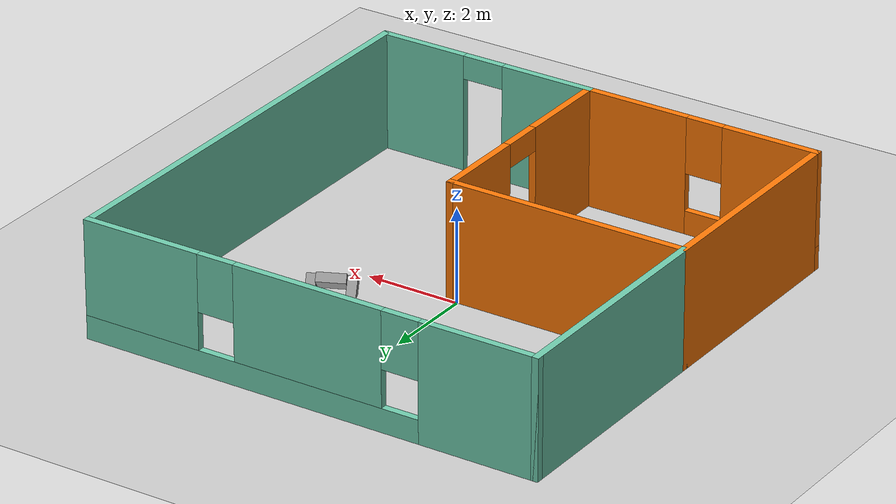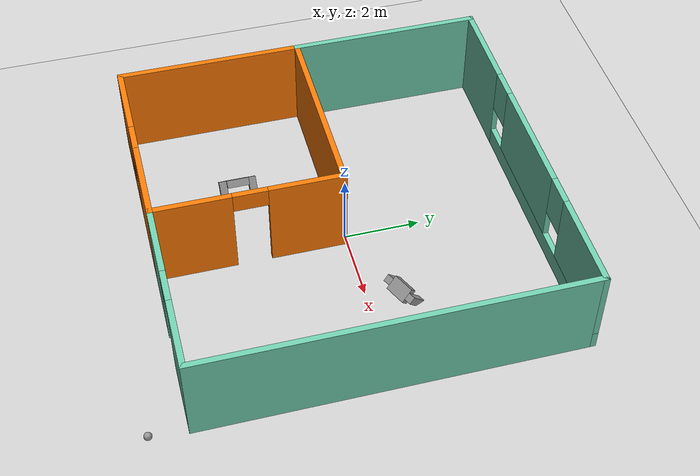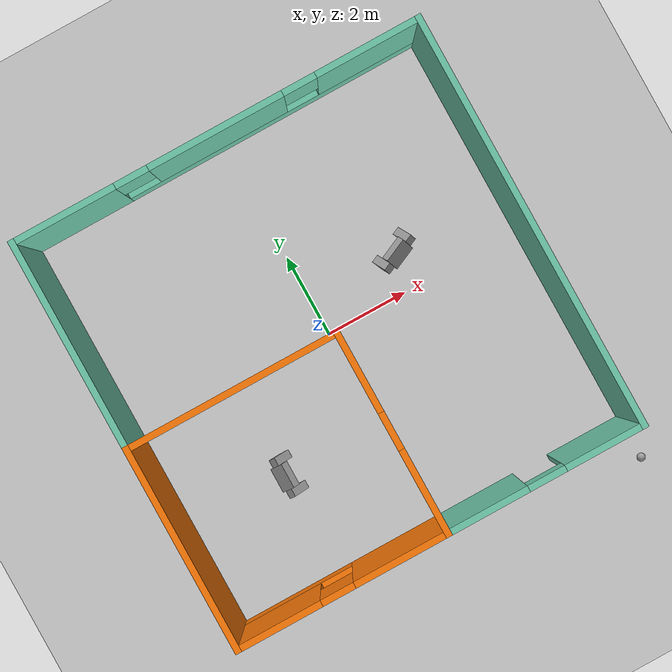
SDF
<sdf version="1.6">
 <world name="default">
  <plugin name="welcome_message" filename="libwelcome_message.so"/>
  <light name="sun" type="directional">
   <pose>0 0 10 0 -0 0</pose>
   <diffuse>0.8 0.8 0.8 1</diffuse>
   <specular>0.1 0.1 0.1 1</specular>
   <attenuation>
    <range>1000</range>
    <constant>0.9</constant>
    <linear>0.01</linear>
    <quadratic>0.001</quadratic>
   </attenuation>
   <direction>-0.5 0.5 -1</direction>
  </light>
  <model name="ground_plane">
   <static>1</static>
   <link name="link">
    <collision name="collision">
     <geometry><plane><normal>0 0 1</normal><size>100 100</size></plane></geometry>
     <surface><friction><ode><mu>100</mu><mu2>50</mu2></ode></friction></surface>
    </collision>
    <visual name="visual">
     <cast_shadows>0</cast_shadows>
     <geometry><plane><normal>0 0 1</normal><size>100 100</size></plane></geometry>
     <material>
      <script><uri>file://media/materials/scripts/gazebo.material</uri><name>Gazebo/Grey</name></script>
     </material>
    </visual>
   </link>
  </model>
  <gravity>0 0 -9.8</gravity>
  <magnetic_field>6e-06 2.3e-05 -4.2e-05</magnetic_field>
  <atmosphere type="adiabatic"/>
  <physics name="default_physics" default="0" type="ode">
   <max_step_size>0.001</max_step_size>
   <real_time_factor>1</real_time_factor>
   <real_time_update_rate>1000</real_time_update_rate>
  </physics>
  <scene><ambient>0.4 0.4 0.4 1</ambient><background>0.7 0.7 0.7 1</background><shadows>1</shadows></scene>
  <spherical_coordinates>
   <surface_model>EARTH_WGS84</surface_model>
   <latitude_deg>0</latitude_deg>
   <longitude_deg>0</longitude_deg>
   <elevation>0</elevation>
   <heading_deg>0</heading_deg>
  </spherical_coordinates>
  <model name="Building">
   <link name="Wall_0">
    <collision name="Wall_0_Collision">
     <geometry><box><size>10 0.15 2.5</size></box></geometry>
     <pose>0 0 1.25 0 -0 0</pose>
    </collision>
    <visual name="Wall_0_Visual">
     <pose>0 0 1.25 0 -0 0</pose>
     <geometry><box><size>10 0.15 2.5</size></box></geometry>
     <material>
      <script><uri>file://media/materials/scripts/gazebo.material</uri><name>Gazebo/Grey</name></script>
      <ambient>0.435294 0.796078 0.67451 1</ambient>
     </material>
    </visual>
    <pose>4.925 0 0 0 -0 1.5708</pose>
   </link>
   <link name="Wall_12">
    <collision name="Wall_12_Collision">
     <geometry><box><size>5 0.15 2.5</size></box></geometry>
     <pose>0 0 1.25 0 -0 0</pose>
    </collision>
    <visual name="Wall_12_Visual">
     <pose>0 0 1.25 0 -0 0</pose>
     <geometry><box><size>5 0.15 2.5</size></box></geometry>
     <material>
      <script><uri>file://media/materials/scripts/gazebo.material</uri><name>Gazebo/Grey</name></script>
      <ambient>0.996078 0.47451 0.0196078 1</ambient>
     </material>
    </visual>
    <pose>-4.925 -2.5 0 0 -0 1.5708</pose>
   </link>
   <link name="Wall_15">
    <collision name="Wall_15_Collision">
     <geometry><box><size>5.15 0.15 2.5</size></box></geometry>
     <pose>0 0 1.25 0 -0 0</pose>
    </collision>
    <visual name="Wall_15_Visual">
     <pose>0 0 1.25 0 -0 0</pose>
     <geometry><box><size>5.15 0.15 2.5</size></box></geometry>
     <material>
      <script><uri>file://media/materials/scripts/gazebo.material</uri><name>Gazebo/Grey</name></script>
      <ambient>0.435294 0.796078 0.67451 1</ambient>
     </material>
    </visual>
    <pose>-4.925 2.425 0 0 0 -1.5708</pose>
   </link>
   <link name="Wall_17">
    <pose>0.175 -2.5 0 0 0 -1.5708</pose>
    <visual name="Wall_17_Visual_0">
     <pose>-1.5019 0 1.25 0 -0 0</pose>
     <geometry><box><size>1.9962 0.15 2.5</size></box></geometry>
     <material>
      <script><uri>file://media/materials/scripts/gazebo.material</uri><name>Gazebo/Grey</name></script>
      <ambient>0.996078 0.47451 0.0196078 1</ambient>
     </material>
    </visual>
    <collision name="Wall_17_Collision_0">
     <geometry><box><size>1.9962 0.15 2.5</size></box></geometry>
     <pose>-1.5019 0 1.25 0 -0 0</pose>
    </collision>
    <visual name="Wall_17_Visual_1">
     <pose>1.4481 0 1.25 0 -0 0</pose>
     <geometry><box><size>2.1038 0.15 2.5</size></box></geometry>
     <material>
      <script><uri>file://media/materials/scripts/gazebo.material</uri><name>Gazebo/Grey</name></script>
      <ambient>0.996078 0.47451 0.0196078 1</ambient>
     </material>
    </visual>
    <collision name="Wall_17_Collision_1">
     <geometry><box><size>2.1038 0.15 2.5</size></box></geometry>
     <pose>1.4481 0 1.25 0 -0 0</pose>
    </collision>
    <visual name="Wall_17_Visual_2">
     <pose>-0.053797 0 2.25 0 -0 0</pose>
     <geometry><box><size>0.9 0.15 0.5</size></box></geometry>
     <material>
      <script><uri>file://media/materials/scripts/gazebo.material</uri><name>Gazebo/Grey</name></script>
      <ambient>0.996078 0.47451 0.0196078 1</ambient>
     </material>
    </visual>
    <collision name="Wall_17_Collision_2">
     <geometry><box><size>0.9 0.15 0.5</size></box></geometry>
     <pose>-0.053797 0 2.25 0 -0 0</pose>
    </collision>
   </link>
   <link name="Wall_18">
    <pose>-2.375 -4.925 0 0 -0 3.14159</pose>
    <visual name="Wall_18_Visual_0">
     <pose>-1.45794 0 1.25 0 -0 0</pose>
     <geometry><box><size>2.33413 0.15 2.5</size></box></geometry>
     <material>
      <script><uri>file://media/materials/scripts/gazebo.material</uri><name>Gazebo/Grey</name></script>
      <ambient>0.996078 0.47451 0.0196078 1</ambient>
     </material>
    </visual>
    <collision name="Wall_18_Collision_0">
     <geometry><box><size>2.33413 0.15 2.5</size></box></geometry>
     <pose>-1.45794 0 1.25 0 -0 0</pose>
    </collision>
    <visual name="Wall_18_Visual_1">
     <pose>1.16706 0 0.25 0 -0 0</pose>
     <geometry><box><size>2.91587 0.15 0.5</size></box></geometry>
     <material>
      <script><uri>file://media/materials/scripts/gazebo.material</uri><name>Gazebo/Grey</name></script>
      <ambient>0.996078 0.47451 0.0196078 1</ambient>
     </material>
    </visual>
    <collision name="Wall_18_Collision_1">
     <geometry><box><size>2.91587 0.15 0.5</size></box></geometry>
     <pose>1.16706 0 0.25 0 -0 0</pose>
    </collision>
    <visual name="Wall_18_Visual_2">
     <pose>1.56706 0 1.5 0 -0 0</pose>
     <geometry><box><size>2.11587 0.15 2</size></box></geometry>
     <material>
      <script><uri>file://media/materials/scripts/gazebo.material</uri><name>Gazebo/Grey</name></script>
      <ambient>0.996078 0.47451 0.0196078 1</ambient>
     </material>
    </visual>
    <collision name="Wall_18_Collision_2">
     <geometry><box><size>2.11587 0.15 2</size></box></geometry>
     <pose>1.56706 0 1.5 0 -0 0</pose>
    </collision>
    <visual name="Wall_18_Visual_3">
     <pose>0.109129 0 1.9 0 -0 0</pose>
     <geometry><box><size>0.8 0.15 1.2</size></box></geometry>
     <material>
      <script><uri>file://media/materials/scripts/gazebo.material</uri><name>Gazebo/Grey</name></script>
      <ambient>0.996078 0.47451 0.0196078 1</ambient>
     </material>
    </visual>
    <collision name="Wall_18_Collision_3">
     <geometry><box><size>0.8 0.15 1.2</size></box></geometry>
     <pose>0.109129 0 1.9 0 -0 0</pose>
    </collision>
   </link>
   <link name="Wall_20">
    <pose>2.55 -4.925 0 0 -0 0</pose>
    <visual name="Wall_20_Visual_0">
     <pose>-1.43275 0 1.25 0 -0 0</pose>
     <geometry><box><size>2.03449 0.15 2.5</size></box></geometry>
     <material>
      <script><uri>file://media/materials/scripts/gazebo.material</uri><name>Gazebo/Grey</name></script>
      <ambient>0.435294 0.796078 0.67451 1</ambient>
     </material>
    </visual>
    <collision name="Wall_20_Collision_0">
     <geometry><box><size>2.03449 0.15 2.5</size></box></geometry>
     <pose>-1.43275 0 1.25 0 -0 0</pose>
    </collision>
    <visual name="Wall_20_Visual_1">
     <pose>1.46725 0 1.25 0 -0 0</pose>
     <geometry><box><size>1.96551 0.15 2.5</size></box></geometry>
     <material>
      <script><uri>file://media/materials/scripts/gazebo.material</uri><name>Gazebo/Grey</name></script>
      <ambient>0.435294 0.796078 0.67451 1</ambient>
     </material>
    </visual>
    <collision name="Wall_20_Collision_1">
     <geometry><box><size>1.96551 0.15 2.5</size></box></geometry>
     <pose>1.46725 0 1.25 0 -0 0</pose>
    </collision>
    <visual name="Wall_20_Visual_2">
     <pose>0.034491 0 2.25 0 -0 0</pose>
     <geometry><box><size>0.9 0.15 0.5</size></box></geometry>
     <material>
      <script><uri>file://media/materials/scripts/gazebo.material</uri><name>Gazebo/Grey</name></script>
      <ambient>0.435294 0.796078 0.67451 1</ambient>
     </material>
    </visual>
    <collision name="Wall_20_Collision_2">
     <geometry><box><size>0.9 0.15 0.5</size></box></geometry>
     <pose>0.034491 0 2.25 0 -0 0</pose>
    </collision>
   </link>
   <link name="Wall_25">
    <collision name="Wall_25_Collision">
     <geometry><box><size>5.25 0.15 2.5</size></box></geometry>
     <pose>0 0 1.25 0 -0 0</pose>
    </collision>
    <visual name="Wall_25_Visual">
     <pose>0 0 1.25 0 -0 0</pose>
     <geometry><box><size>5.25 0.15 2.5</size></box></geometry>
     <material>
      <script><uri>file://media/materials/scripts/gazebo.material</uri><name>Gazebo/Grey</name></script>
      <ambient>0.996078 0.47451 0.0196078 1</ambient>
     </material>
    </visual>
    <pose>-2.375 -0.075 0 0 -0 3.14159</pose>
   </link>
   <link name="Wall_32">
    <pose>0 4.925 0 0 -0 0</pose>
    <visual name="Wall_32_Visual_0">
     <pose>-3.72081 0 1.25 0 -0 0</pose>
     <geometry><box><size>2.55837 0.15 2.5</size></box></geometry>
     <material>
      <script><uri>file://media/materials/scripts/gazebo.material</uri><name>Gazebo/Grey</name></script>
      <ambient>0.435294 0.796078 0.67451 1</ambient>
     </material>
    </visual>
    <collision name="Wall_32_Collision_0">
     <geometry><box><size>2.55837 0.15 2.5</size></box></geometry>
     <pose>-3.72081 0 1.25 0 -0 0</pose>
    </collision>
    <visual name="Wall_32_Visual_1">
     <pose>1.27919 0 0.25 0 -0 0</pose>
     <geometry><box><size>7.44163 0.15 0.5</size></box></geometry>
     <material>
      <script><uri>file://media/materials/scripts/gazebo.material</uri><name>Gazebo/Grey</name></script>
      <ambient>0.435294 0.796078 0.67451 1</ambient>
     </material>
    </visual>
    <collision name="Wall_32_Collision_1">
     <geometry><box><size>7.44163 0.15 0.5</size></box></geometry>
     <pose>1.27919 0 0.25 0 -0 0</pose>
    </collision>
    <visual name="Wall_32_Visual_2">
     <pose>-0.01016 0 1.5 0 -0 0</pose>
     <geometry><box><size>3.26294 0.15 2</size></box></geometry>
     <material>
      <script><uri>file://media/materials/scripts/gazebo.material</uri><name>Gazebo/Grey</name></script>
      <ambient>0.435294 0.796078 0.67451 1</ambient>
     </material>
    </visual>
    <collision name="Wall_32_Collision_2">
     <geometry><box><size>3.26294 0.15 2</size></box></geometry>
     <pose>-0.01016 0 1.5 0 -0 0</pose>
    </collision>
    <visual name="Wall_32_Visual_3">
     <pose>3.71066 0 1.5 0 -0 0</pose>
     <geometry><box><size>2.57869 0.15 2</size></box></geometry>
     <material>
      <script><uri>file://media/materials/scripts/gazebo.material</uri><name>Gazebo/Grey</name></script>
      <ambient>0.435294 0.796078 0.67451 1</ambient>
     </material>
    </visual>
    <collision name="Wall_32_Collision_3">
     <geometry><box><size>2.57869 0.15 2</size></box></geometry>
     <pose>3.71066 0 1.5 0 -0 0</pose>
    </collision>
    <visual name="Wall_32_Visual_4">
     <pose>-2.04163 0 1.9 0 -0 0</pose>
     <geometry><box><size>0.8 0.15 1.2</size></box></geometry>
     <material>
      <script><uri>file://media/materials/scripts/gazebo.material</uri><name>Gazebo/Grey</name></script>
      <ambient>0.435294 0.796078 0.67451 1</ambient>
     </material>
    </visual>
    <collision name="Wall_32_Collision_4">
     <geometry><box><size>0.8 0.15 1.2</size></box></geometry>
     <pose>-2.04163 0 1.9 0 -0 0</pose>
    </collision>
    <visual name="Wall_32_Visual_5">
     <pose>2.02131 0 1.9 0 -0 0</pose>
     <geometry><box><size>0.8 0.15 1.2</size></box></geometry>
     <material>
      <script><uri>file://media/materials/scripts/gazebo.material</uri><name>Gazebo/Grey</name></script>
      <ambient>0.435294 0.796078 0.67451 1</ambient>
     </material>
    </visual>
    <collision name="Wall_32_Collision_5">
     <geometry><box><size>0.8 0.15 1.2</size></box></geometry>
     <pose>2.02131 0 1.9 0 -0 0</pose>
    </collision>
   </link>
   <static>1</static>
  </model>
  <model name="HumanoidRobot_2">
   <link name="link_0">
    <pose>0 0 1.5 0 -0 0</pose>
    <inertial>
     <mass>1</mass>
     <inertia>
      <ixx>0.166667</ixx>
      <ixy>0</ixy>
      <ixz>0</ixz>
      <iyy>0.166667</iyy>
      <iyz>0</iyz>
      <izz>0.166667</izz>
     </inertia>
    </inertial>
    <visual name="visual">
     <geometry><box><size>0.4 0.6 0.2</size></box></geometry>
     <material>
      <lighting>1</lighting>
      <script><uri>file://media/materials/scripts/gazebo.material</uri><name>Gazebo/Grey</name></script>
      <ambient>0.3 0.3 0.3 1</ambient>
      <diffuse>0.7 0.7 0.7 1</diffuse>
      <specular>0.01 0.01 0.01 1</specular>
      <emissive>0 0 0 1</emissive>
      <shader type="vertex"><normal_map>__default__</normal_map></shader>
     </material>
    </visual>
    <collision name="collision">
     <geometry><box><size>0.4 0.6 0.2</size></box></geometry>
     <surface>
      <friction>
       <ode><mu>1</mu><mu2>1</mu2><fdir1>0 0 0</fdir1><slip1>0</slip1><slip2>0</slip2></ode>
       <torsional>
        <coefficient>1</coefficient>
        <patch_radius>0</patch_radius>
        <surface_radius>0</surface_radius>
        <use_patch_radius>1</use_patch_radius>
        <ode><slip>0</slip></ode>
       </torsional>
      </friction>
      <bounce><restitution_coefficient>0</restitution_coefficient><threshold>1e+06</threshold></bounce>
      <contact>
       <collide_without_contact>0</collide_without_contact>
       <collide_without_contact_bitmask>1</collide_without_contact_bitmask>
       <collide_bitmask>1</collide_bitmask>
       <ode>
        <soft_cfm>0</soft_cfm>
        <soft_erp>0.2</soft_erp>
        <kp>1e+13</kp>
        <kd>1</kd>
        <max_vel>0.01</max_vel>
        <min_depth>0</min_depth>
       </ode>
       <bullet>
        <split_impulse>1</split_impulse>
        <split_impulse_penetration_threshold>-0.01</split_impulse_penetration_threshold>
        <soft_cfm>0</soft_cfm>
        <soft_erp>0.2</soft_erp>
        <kp>1e+13</kp>
        <kd>1</kd>
       </bullet>
      </contact>
     </surface>
    </collision>
   </link>
   <link name="link_1">
    <pose>0 -0.4 0.85 0 -0 0</pose>
    <inertial>
     <mass>1</mass>
     <inertia>
      <ixx>0.166667</ixx>
      <ixy>0</ixy>
      <ixz>0</ixz>
      <iyy>0.166667</iyy>
      <iyz>0</iyz>
      <izz>0.166667</izz>
     </inertia>
    </inertial>
    <visual name="visual">
     <geometry><box><size>0.2 0.2 0.5</size></box></geometry>
     <material>
      <lighting>1</lighting>
      <script><uri>file://media/materials/scripts/gazebo.material</uri><name>Gazebo/Grey</name></script>
      <ambient>0.3 0.3 0.3 1</ambient>
      <diffuse>0.7 0.7 0.7 1</diffuse>
      <specular>0.01 0.01 0.01 1</specular>
      <emissive>0 0 0 1</emissive>
      <shader type="vertex"><normal_map>__default__</normal_map></shader>
     </material>
    </visual>
    <collision name="collision">
     <geometry><box><size>0.2 0.2 0.5</size></box></geometry>
     <surface>
      <friction>
       <ode><mu>1</mu><mu2>1</mu2><fdir1>0 0 0</fdir1><slip1>0</slip1><slip2>0</slip2></ode>
       <torsional>
        <coefficient>1</coefficient>
        <patch_radius>0</patch_radius>
        <surface_radius>0</surface_radius>
        <use_patch_radius>1</use_patch_radius>
        <ode><slip>0</slip></ode>
       </torsional>
      </friction>
      <bounce><restitution_coefficient>0</restitution_coefficient><threshold>1e+06</threshold></bounce>
      <contact>
       <collide_without_contact>0</collide_without_contact>
       <collide_without_contact_bitmask>1</collide_without_contact_bitmask>
       <collide_bitmask>1</collide_bitmask>
       <ode>
        <soft_cfm>0</soft_cfm>
        <soft_erp>0.2</soft_erp>
        <kp>1e+13</kp>
        <kd>1</kd>
        <max_vel>0.01</max_vel>
        <min_depth>0</min_depth>
       </ode>
       <bullet>
        <split_impulse>1</split_impulse>
        <split_impulse_penetration_threshold>-0.01</split_impulse_penetration_threshold>
        <soft_cfm>0</soft_cfm>
        <soft_erp>0.2</soft_erp>
        <kp>1e+13</kp>
        <kd>1</kd>
       </bullet>
      </contact>
     </surface>
    </collision>
   </link>
   <link name="link_1_clone">
    <pose>0 -0.4 1.35 0 -0 0</pose>
    <inertial>
     <mass>1</mass>
     <inertia>
      <ixx>0.166667</ixx>
      <ixy>0</ixy>
      <ixz>0</ixz>
      <iyy>0.166667</iyy>
      <iyz>0</iyz>
      <izz>0.166667</izz>
     </inertia>
    </inertial>
    <visual name="visual">
     <geometry><box><size>0.2 0.2 0.5</size></box></geometry>
     <material>
      <lighting>1</lighting>
      <script><uri>file://media/materials/scripts/gazebo.material</uri><name>Gazebo/Grey</name></script>
      <ambient>0.3 0.3 0.3 1</ambient>
      <diffuse>0.7 0.7 0.7 1</diffuse>
      <specular>0.01 0.01 0.01 1</specular>
      <emissive>0 0 0 1</emissive>
      <shader type="vertex"><normal_map>__default__</normal_map></shader>
     </material>
    </visual>
    <collision name="collision">
     <geometry><box><size>0.2 0.2 0.5</size></box></geometry>
     <surface>
      <friction>
       <ode><mu>1</mu><mu2>1</mu2><fdir1>0 0 0</fdir1><slip1>0</slip1><slip2>0</slip2></ode>
       <torsional>
        <coefficient>1</coefficient>
        <patch_radius>0</patch_radius>
        <surface_radius>0</surface_radius>
        <use_patch_radius>1</use_patch_radius>
        <ode><slip>0</slip></ode>
       </torsional>
      </friction>
      <bounce><restitution_coefficient>0</restitution_coefficient><threshold>1e+06</threshold></bounce>
      <contact>
       <collide_without_contact>0</collide_without_contact>
       <collide_without_contact_bitmask>1</collide_without_contact_bitmask>
       <collide_bitmask>1</collide_bitmask>
       <ode>
        <soft_cfm>0</soft_cfm>
        <soft_erp>0.2</soft_erp>
        <kp>1e+13</kp>
        <kd>1</kd>
        <max_vel>0.01</max_vel>
        <min_depth>0</min_depth>
       </ode>
       <bullet>
        <split_impulse>1</split_impulse>
        <split_impulse_penetration_threshold>-0.01</split_impulse_penetration_threshold>
        <soft_cfm>0</soft_cfm>
        <soft_erp>0.2</soft_erp>
        <kp>1e+13</kp>
        <kd>1</kd>
       </bullet>
      </contact>
     </surface>
    </collision>
   </link>
   <link name="link_1_clone_0">
    <pose>0 0.4 1.35 0 -0 0</pose>
    <inertial>
     <mass>1</mass>
     <inertia>
      <ixx>0.166667</ixx>
      <ixy>0</ixy>
      <ixz>0</ixz>
      <iyy>0.166667</iyy>
      <iyz>0</iyz>
      <izz>0.166667</izz>
     </inertia>
    </inertial>
    <visual name="visual">
     <geometry><box><size>0.2 0.2 0.5</size></box></geometry>
     <material>
      <lighting>1</lighting>
      <script><uri>file://media/materials/scripts/gazebo.material</uri><name>Gazebo/Grey</name></script>
      <ambient>0.3 0.3 0.3 1</ambient>
      <diffuse>0.7 0.7 0.7 1</diffuse>
      <specular>0.01 0.01 0.01 1</specular>
      <emissive>0 0 0 1</emissive>
      <shader type="vertex"><normal_map>__default__</normal_map></shader>
     </material>
    </visual>
    <collision name="collision">
     <geometry><box><size>0.2 0.2 0.5</size></box></geometry>
     <surface>
      <friction>
       <ode><mu>1</mu><mu2>1</mu2><fdir1>0 0 0</fdir1><slip1>0</slip1><slip2>0</slip2></ode>
       <torsional>
        <coefficient>1</coefficient>
        <patch_radius>0</patch_radius>
        <surface_radius>0</surface_radius>
        <use_patch_radius>1</use_patch_radius>
        <ode><slip>0</slip></ode>
       </torsional>
      </friction>
      <bounce><restitution_coefficient>0</restitution_coefficient><threshold>1e+06</threshold></bounce>
      <contact>
       <collide_without_contact>0</collide_without_contact>
       <collide_without_contact_bitmask>1</collide_without_contact_bitmask>
       <collide_bitmask>1</collide_bitmask>
       <ode>
        <soft_cfm>0</soft_cfm>
        <soft_erp>0.2</soft_erp>
        <kp>1e+13</kp>
        <kd>1</kd>
        <max_vel>0.01</max_vel>
        <min_depth>0</min_depth>
       </ode>
       <bullet>
        <split_impulse>1</split_impulse>
        <split_impulse_penetration_threshold>-0.01</split_impulse_penetration_threshold>
        <soft_cfm>0</soft_cfm>
        <soft_erp>0.2</soft_erp>
        <kp>1e+13</kp>
        <kd>1</kd>
       </bullet>
      </contact>
     </surface>
    </collision>
   </link>
   <link name="link_1_clone_1">
    <pose>0 0.4 0.85 0 -0 0</pose>
    <inertial>
     <mass>1</mass>
     <inertia>
      <ixx>0.166667</ixx>
      <ixy>0</ixy>
      <ixz>0</ixz>
      <iyy>0.166667</iyy>
      <iyz>0</iyz>
      <izz>0.166667</izz>
     </inertia>
    </inertial>
    <visual name="visual">
     <geometry><box><size>0.2 0.2 0.5</size></box></geometry>
     <material>
      <lighting>1</lighting>
      <script><uri>file://media/materials/scripts/gazebo.material</uri><name>Gazebo/Grey</name></script>
      <ambient>0.3 0.3 0.3 1</ambient>
      <diffuse>0.7 0.7 0.7 1</diffuse>
      <specular>0.01 0.01 0.01 1</specular>
      <emissive>0 0 0 1</emissive>
      <shader type="vertex"><normal_map>__default__</normal_map></shader>
     </material>
    </visual>
    <collision name="collision">
     <geometry><box><size>0.2 0.2 0.5</size></box></geometry>
     <surface>
      <friction>
       <ode><mu>1</mu><mu2>1</mu2><fdir1>0 0 0</fdir1><slip1>0</slip1><slip2>0</slip2></ode>
       <torsional>
        <coefficient>1</coefficient>
        <patch_radius>0</patch_radius>
        <surface_radius>0</surface_radius>
        <use_patch_radius>1</use_patch_radius>
        <ode><slip>0</slip></ode>
       </torsional>
      </friction>
      <bounce><restitution_coefficient>0</restitution_coefficient><threshold>1e+06</threshold></bounce>
      <contact>
       <collide_without_contact>0</collide_without_contact>
       <collide_without_contact_bitmask>1</collide_without_contact_bitmask>
       <collide_bitmask>1</collide_bitmask>
       <ode>
        <soft_cfm>0</soft_cfm>
        <soft_erp>0.2</soft_erp>
        <kp>1e+13</kp>
        <kd>1</kd>
        <max_vel>0.01</max_vel>
        <min_depth>0</min_depth>
       </ode>
       <bullet>
        <split_impulse>1</split_impulse>
        <split_impulse_penetration_threshold>-0.01</split_impulse_penetration_threshold>
        <soft_cfm>0</soft_cfm>
        <soft_erp>0.2</soft_erp>
        <kp>1e+13</kp>
        <kd>1</kd>
       </bullet>
      </contact>
     </surface>
    </collision>
   </link>
   <link name="link_2">
    <pose>0 -0.4 0.55 0 -0 0</pose>
    <inertial>
     <mass>1</mass>
     <inertia>
      <ixx>0.166667</ixx>
      <ixy>0</ixy>
      <ixz>0</ixz>
      <iyy>0.166667</iyy>
      <iyz>0</iyz>
      <izz>0.166667</izz>
     </inertia>
    </inertial>
    <visual name="visual">
     <geometry><box><size>0.4 0.4 0.1</size></box></geometry>
     <material>
      <lighting>1</lighting>
      <script><uri>file://media/materials/scripts/gazebo.material</uri><name>Gazebo/Grey</name></script>
      <ambient>0.3 0.3 0.3 1</ambient>
      <diffuse>0.7 0.7 0.7 1</diffuse>
      <specular>0.01 0.01 0.01 1</specular>
      <emissive>0 0 0 1</emissive>
      <shader type="vertex"><normal_map>__default__</normal_map></shader>
     </material>
    </visual>
    <collision name="collision">
     <geometry><box><size>0.4 0.4 0.1</size></box></geometry>
     <surface>
      <friction>
       <ode><mu>1</mu><mu2>1</mu2><fdir1>0 0 0</fdir1><slip1>0</slip1><slip2>0</slip2></ode>
       <torsional>
        <coefficient>1</coefficient>
        <patch_radius>0</patch_radius>
        <surface_radius>0</surface_radius>
        <use_patch_radius>1</use_patch_radius>
        <ode><slip>0</slip></ode>
       </torsional>
      </friction>
      <bounce><restitution_coefficient>0</restitution_coefficient><threshold>1e+06</threshold></bounce>
      <contact>
       <collide_without_contact>0</collide_without_contact>
       <collide_without_contact_bitmask>1</collide_without_contact_bitmask>
       <collide_bitmask>1</collide_bitmask>
       <ode>
        <soft_cfm>0</soft_cfm>
        <soft_erp>0.2</soft_erp>
        <kp>1e+13</kp>
        <kd>1</kd>
        <max_vel>0.01</max_vel>
        <min_depth>0</min_depth>
       </ode>
       <bullet>
        <split_impulse>1</split_impulse>
        <split_impulse_penetration_threshold>-0.01</split_impulse_penetration_threshold>
        <soft_cfm>0</soft_cfm>
        <soft_erp>0.2</soft_erp>
        <kp>1e+13</kp>
        <kd>1</kd>
       </bullet>
      </contact>
     </surface>
    </collision>
   </link>
   <link name="link_2_clone">
    <pose>0 0.4 0.55 0 -0 0</pose>
    <inertial>
     <mass>1</mass>
     <inertia>
      <ixx>0.166667</ixx>
      <ixy>0</ixy>
      <ixz>0</ixz>
      <iyy>0.166667</iyy>
      <iyz>0</iyz>
      <izz>0.166667</izz>
     </inertia>
    </inertial>
    <visual name="visual">
     <geometry><box><size>0.4 0.4 0.1</size></box></geometry>
     <material>
      <lighting>1</lighting>
      <script><uri>file://media/materials/scripts/gazebo.material</uri><name>Gazebo/Grey</name></script>
      <ambient>0.3 0.3 0.3 1</ambient>
      <diffuse>0.7 0.7 0.7 1</diffuse>
      <specular>0.01 0.01 0.01 1</specular>
      <emissive>0 0 0 1</emissive>
      <shader type="vertex"><normal_map>__default__</normal_map></shader>
     </material>
    </visual>
    <collision name="collision">
     <geometry><box><size>0.4 0.4 0.1</size></box></geometry>
     <surface>
      <friction>
       <ode><mu>1</mu><mu2>1</mu2><fdir1>0 0 0</fdir1><slip1>0</slip1><slip2>0</slip2></ode>
       <torsional>
        <coefficient>1</coefficient>
        <patch_radius>0</patch_radius>
        <surface_radius>0</surface_radius>
        <use_patch_radius>1</use_patch_radius>
        <ode><slip>0</slip></ode>
       </torsional>
      </friction>
      <bounce><restitution_coefficient>0</restitution_coefficient><threshold>1e+06</threshold></bounce>
      <contact>
       <collide_without_contact>0</collide_without_contact>
       <collide_without_contact_bitmask>1</collide_without_contact_bitmask>
       <collide_bitmask>1</collide_bitmask>
       <ode>
        <soft_cfm>0</soft_cfm>
        <soft_erp>0.2</soft_erp>
        <kp>1e+13</kp>
        <kd>1</kd>
        <max_vel>0.01</max_vel>
        <min_depth>0</min_depth>
       </ode>
       <bullet>
        <split_impulse>1</split_impulse>
        <split_impulse_penetration_threshold>-0.01</split_impulse_penetration_threshold>
        <soft_cfm>0</soft_cfm>
        <soft_erp>0.2</soft_erp>
        <kp>1e+13</kp>
        <kd>1</kd>
       </bullet>
      </contact>
     </surface>
    </collision>
   </link>
   <joint name="link_0_JOINT_2" type="revolute">
    <parent>link_0</parent>
    <child>link_1_clone_0</child>
    <axis>
     <xyz>0 1 0</xyz>
     <use_parent_model_frame>0</use_parent_model_frame>
     <limit>
      <lower>-1.79769e+308</lower>
      <upper>1.79769e+308</upper>
      <effort>-1</effort>
      <velocity>-1</velocity>
     </limit>
     <dynamics>
      <spring_reference>0</spring_reference>
      <spring_stiffness>0</spring_stiffness>
      <damping>0</damping>
      <friction>0</friction>
     </dynamics>
    </axis>
    <physics>
     <ode><limit><cfm>0</cfm><erp>0.2</erp></limit><suspension><cfm>0</cfm><erp>0.2</erp></suspension></ode>
    </physics>
   </joint>
   <joint name="link_1_JOINT_4" type="revolute">
    <parent>link_1</parent>
    <child>link_2</child>
    <axis>
     <xyz>0 1 0</xyz>
     <use_parent_model_frame>0</use_parent_model_frame>
     <limit>
      <lower>-1.79769e+308</lower>
      <upper>1.79769e+308</upper>
      <effort>-1</effort>
      <velocity>-1</velocity>
     </limit>
     <dynamics>
      <spring_reference>0</spring_reference>
      <spring_stiffness>0</spring_stiffness>
      <damping>0</damping>
      <friction>0</friction>
     </dynamics>
    </axis>
    <physics>
     <ode><limit><cfm>0</cfm><erp>0.2</erp></limit><suspension><cfm>0</cfm><erp>0.2</erp></suspension></ode>
    </physics>
   </joint>
   <joint name="link_1_clone_0_JOINT_3" type="revolute">
    <parent>link_1_clone_0</parent>
    <child>link_1_clone_1</child>
    <axis>
     <xyz>0 1 0</xyz>
     <use_parent_model_frame>0</use_parent_model_frame>
     <limit>
      <lower>-1.79769e+308</lower>
      <upper>1.79769e+308</upper>
      <effort>-1</effort>
      <velocity>-1</velocity>
     </limit>
     <dynamics>
      <spring_reference>0</spring_reference>
      <spring_stiffness>0</spring_stiffness>
      <damping>0</damping>
      <friction>0</friction>
     </dynamics>
    </axis>
    <physics>
     <ode><limit><cfm>0</cfm><erp>0.2</erp></limit><suspension><cfm>0</cfm><erp>0.2</erp></suspension></ode>
    </physics>
   </joint>
   <joint name="link_1_clone_1_JOINT_5" type="revolute">
    <parent>link_1_clone_1</parent>
    <child>link_2_clone</child>
    <axis>
     <xyz>0 1 0</xyz>
     <use_parent_model_frame>0</use_parent_model_frame>
     <limit>
      <lower>-1.79769e+308</lower>
      <upper>1.79769e+308</upper>
      <effort>-1</effort>
      <velocity>-1</velocity>
     </limit>
     <dynamics>
      <spring_reference>0</spring_reference>
      <spring_stiffness>0</spring_stiffness>
      <damping>0</damping>
      <friction>0</friction>
     </dynamics>
    </axis>
    <physics>
     <ode><limit><cfm>0</cfm><erp>0.2</erp></limit><suspension><cfm>0</cfm><erp>0.2</erp></suspension></ode>
    </physics>
   </joint>
   <joint name="link_1_clone_JOINT_0" type="revolute">
    <parent>link_0</parent>
    <child>link_1_clone</child>
    <axis>
     <xyz>0 1 0</xyz>
     <use_parent_model_frame>0</use_parent_model_frame>
     <limit>
      <lower>-1.79769e+308</lower>
      <upper>1.79769e+308</upper>
      <effort>-1</effort>
      <velocity>-1</velocity>
     </limit>
     <dynamics>
      <spring_reference>0</spring_reference>
      <spring_stiffness>0</spring_stiffness>
      <damping>0</damping>
      <friction>0</friction>
     </dynamics>
    </axis>
    <physics>
     <ode><limit><cfm>0</cfm><erp>0.2</erp></limit><suspension><cfm>0</cfm><erp>0.2</erp></suspension></ode>
    </physics>
   </joint>
   <joint name="link_1_clone_JOINT_1" type="revolute">
    <parent>link_1_clone</parent>
    <child>link_1</child>
    <axis>
     <xyz>0 1 0</xyz>
     <use_parent_model_frame>0</use_parent_model_frame>
     <limit>
      <lower>-1.79769e+308</lower>
      <upper>1.79769e+308</upper>
      <effort>-1</effort>
      <velocity>-1</velocity>
     </limit>
     <dynamics>
      <spring_reference>0</spring_reference>
      <spring_stiffness>0</spring_stiffness>
      <damping>0</damping>
      <friction>0</friction>
     </dynamics>
    </axis>
    <physics>
     <ode><limit><cfm>0</cfm><erp>0.2</erp></limit><suspension><cfm>0</cfm><erp>0.2</erp></suspension></ode>
    </physics>
   </joint>
   <static>0</static>
   <pose>-1.43566 -2.36622 -0.886472 1.1e-05 -0.751423 0.000513</pose>
  </model>
  <model name="HumanoidRobot_3">
   <link name="link_0">
    <pose>0 0 1.5 0 -0 0</pose>
    <inertial>
     <mass>1</mass>
     <inertia>
      <ixx>0.166667</ixx>
      <ixy>0</ixy>
      <ixz>0</ixz>
      <iyy>0.166667</iyy>
      <iyz>0</iyz>
      <izz>0.166667</izz>
     </inertia>
    </inertial>
    <visual name="visual">
     <geometry><box><size>0.4 0.6 0.2</size></box></geometry>
     <material>
      <lighting>1</lighting>
      <script><uri>file://media/materials/scripts/gazebo.material</uri><name>Gazebo/Grey</name></script>
      <ambient>0.3 0.3 0.3 1</ambient>
      <diffuse>0.7 0.7 0.7 1</diffuse>
      <specular>0.01 0.01 0.01 1</specular>
      <emissive>0 0 0 1</emissive>
      <shader type="vertex"><normal_map>__default__</normal_map></shader>
     </material>
    </visual>
    <collision name="collision">
     <geometry><box><size>0.4 0.6 0.2</size></box></geometry>
     <surface>
      <friction>
       <ode><mu>1</mu><mu2>1</mu2><fdir1>0 0 0</fdir1><slip1>0</slip1><slip2>0</slip2></ode>
       <torsional>
        <coefficient>1</coefficient>
        <patch_radius>0</patch_radius>
        <surface_radius>0</surface_radius>
        <use_patch_radius>1</use_patch_radius>
        <ode><slip>0</slip></ode>
       </torsional>
      </friction>
      <bounce><restitution_coefficient>0</restitution_coefficient><threshold>1e+06</threshold></bounce>
      <contact>
       <collide_without_contact>0</collide_without_contact>
       <collide_without_contact_bitmask>1</collide_without_contact_bitmask>
       <collide_bitmask>1</collide_bitmask>
       <ode>
        <soft_cfm>0</soft_cfm>
        <soft_erp>0.2</soft_erp>
        <kp>1e+13</kp>
        <kd>1</kd>
        <max_vel>0.01</max_vel>
        <min_depth>0</min_depth>
       </ode>
       <bullet>
        <split_impulse>1</split_impulse>
        <split_impulse_penetration_threshold>-0.01</split_impulse_penetration_threshold>
        <soft_cfm>0</soft_cfm>
        <soft_erp>0.2</soft_erp>
        <kp>1e+13</kp>
        <kd>1</kd>
       </bullet>
      </contact>
     </surface>
    </collision>
   </link>
   <link name="link_1">
    <pose>0 -0.4 0.85 0 -0 0</pose>
    <inertial>
     <mass>1</mass>
     <inertia>
      <ixx>0.166667</ixx>
      <ixy>0</ixy>
      <ixz>0</ixz>
      <iyy>0.166667</iyy>
      <iyz>0</iyz>
      <izz>0.166667</izz>
     </inertia>
    </inertial>
    <visual name="visual">
     <geometry><box><size>0.2 0.2 0.5</size></box></geometry>
     <material>
      <lighting>1</lighting>
      <script><uri>file://media/materials/scripts/gazebo.material</uri><name>Gazebo/Grey</name></script>
      <ambient>0.3 0.3 0.3 1</ambient>
      <diffuse>0.7 0.7 0.7 1</diffuse>
      <specular>0.01 0.01 0.01 1</specular>
      <emissive>0 0 0 1</emissive>
      <shader type="vertex"><normal_map>__default__</normal_map></shader>
     </material>
    </visual>
    <collision name="collision">
     <geometry><box><size>0.2 0.2 0.5</size></box></geometry>
     <surface>
      <friction>
       <ode><mu>1</mu><mu2>1</mu2><fdir1>0 0 0</fdir1><slip1>0</slip1><slip2>0</slip2></ode>
       <torsional>
        <coefficient>1</coefficient>
        <patch_radius>0</patch_radius>
        <surface_radius>0</surface_radius>
        <use_patch_radius>1</use_patch_radius>
        <ode><slip>0</slip></ode>
       </torsional>
      </friction>
      <bounce><restitution_coefficient>0</restitution_coefficient><threshold>1e+06</threshold></bounce>
      <contact>
       <collide_without_contact>0</collide_without_contact>
       <collide_without_contact_bitmask>1</collide_without_contact_bitmask>
       <collide_bitmask>1</collide_bitmask>
       <ode>
        <soft_cfm>0</soft_cfm>
        <soft_erp>0.2</soft_erp>
        <kp>1e+13</kp>
        <kd>1</kd>
        <max_vel>0.01</max_vel>
        <min_depth>0</min_depth>
       </ode>
       <bullet>
        <split_impulse>1</split_impulse>
        <split_impulse_penetration_threshold>-0.01</split_impulse_penetration_threshold>
        <soft_cfm>0</soft_cfm>
        <soft_erp>0.2</soft_erp>
        <kp>1e+13</kp>
        <kd>1</kd>
       </bullet>
      </contact>
     </surface>
    </collision>
   </link>
   <link name="link_1_clone">
    <pose>0 -0.4 1.35 0 -0 0</pose>
    <inertial>
     <mass>1</mass>
     <inertia>
      <ixx>0.166667</ixx>
      <ixy>0</ixy>
      <ixz>0</ixz>
      <iyy>0.166667</iyy>
      <iyz>0</iyz>
      <izz>0.166667</izz>
     </inertia>
    </inertial>
    <visual name="visual">
     <geometry><box><size>0.2 0.2 0.5</size></box></geometry>
     <material>
      <lighting>1</lighting>
      <script><uri>file://media/materials/scripts/gazebo.material</uri><name>Gazebo/Grey</name></script>
      <ambient>0.3 0.3 0.3 1</ambient>
      <diffuse>0.7 0.7 0.7 1</diffuse>
      <specular>0.01 0.01 0.01 1</specular>
      <emissive>0 0 0 1</emissive>
      <shader type="vertex"><normal_map>__default__</normal_map></shader>
     </material>
    </visual>
    <collision name="collision">
     <geometry><box><size>0.2 0.2 0.5</size></box></geometry>
     <surface>
      <friction>
       <ode><mu>1</mu><mu2>1</mu2><fdir1>0 0 0</fdir1><slip1>0</slip1><slip2>0</slip2></ode>
       <torsional>
        <coefficient>1</coefficient>
        <patch_radius>0</patch_radius>
        <surface_radius>0</surface_radius>
        <use_patch_radius>1</use_patch_radius>
        <ode><slip>0</slip></ode>
       </torsional>
      </friction>
      <bounce><restitution_coefficient>0</restitution_coefficient><threshold>1e+06</threshold></bounce>
      <contact>
       <collide_without_contact>0</collide_without_contact>
       <collide_without_contact_bitmask>1</collide_without_contact_bitmask>
       <collide_bitmask>1</collide_bitmask>
       <ode>
        <soft_cfm>0</soft_cfm>
        <soft_erp>0.2</soft_erp>
        <kp>1e+13</kp>
        <kd>1</kd>
        <max_vel>0.01</max_vel>
        <min_depth>0</min_depth>
       </ode>
       <bullet>
        <split_impulse>1</split_impulse>
        <split_impulse_penetration_threshold>-0.01</split_impulse_penetration_threshold>
        <soft_cfm>0</soft_cfm>
        <soft_erp>0.2</soft_erp>
        <kp>1e+13</kp>
        <kd>1</kd>
       </bullet>
      </contact>
     </surface>
    </collision>
   </link>
   <link name="link_1_clone_0">
    <pose>0 0.4 1.35 0 -0 0</pose>
    <inertial>
     <mass>1</mass>
     <inertia>
      <ixx>0.166667</ixx>
      <ixy>0</ixy>
      <ixz>0</ixz>
      <iyy>0.166667</iyy>
      <iyz>0</iyz>
      <izz>0.166667</izz>
     </inertia>
    </inertial>
    <visual name="visual">
     <geometry><box><size>0.2 0.2 0.5</size></box></geometry>
     <material>
      <lighting>1</lighting>
      <script><uri>file://media/materials/scripts/gazebo.material</uri><name>Gazebo/Grey</name></script>
      <ambient>0.3 0.3 0.3 1</ambient>
      <diffuse>0.7 0.7 0.7 1</diffuse>
      <specular>0.01 0.01 0.01 1</specular>
      <emissive>0 0 0 1</emissive>
      <shader type="vertex"><normal_map>__default__</normal_map></shader>
     </material>
    </visual>
    <collision name="collision">
     <geometry><box><size>0.2 0.2 0.5</size></box></geometry>
     <surface>
      <friction>
       <ode><mu>1</mu><mu2>1</mu2><fdir1>0 0 0</fdir1><slip1>0</slip1><slip2>0</slip2></ode>
       <torsional>
        <coefficient>1</coefficient>
        <patch_radius>0</patch_radius>
        <surface_radius>0</surface_radius>
        <use_patch_radius>1</use_patch_radius>
        <ode><slip>0</slip></ode>
       </torsional>
      </friction>
      <bounce><restitution_coefficient>0</restitution_coefficient><threshold>1e+06</threshold></bounce>
      <contact>
       <collide_without_contact>0</collide_without_contact>
       <collide_without_contact_bitmask>1</collide_without_contact_bitmask>
       <collide_bitmask>1</collide_bitmask>
       <ode>
        <soft_cfm>0</soft_cfm>
        <soft_erp>0.2</soft_erp>
        <kp>1e+13</kp>
        <kd>1</kd>
        <max_vel>0.01</max_vel>
        <min_depth>0</min_depth>
       </ode>
       <bullet>
        <split_impulse>1</split_impulse>
        <split_impulse_penetration_threshold>-0.01</split_impulse_penetration_threshold>
        <soft_cfm>0</soft_cfm>
        <soft_erp>0.2</soft_erp>
        <kp>1e+13</kp>
        <kd>1</kd>
       </bullet>
      </contact>
     </surface>
    </collision>
   </link>
   <link name="link_1_clone_1">
    <pose>0 0.4 0.85 0 -0 0</pose>
    <inertial>
     <mass>1</mass>
     <inertia>
      <ixx>0.166667</ixx>
      <ixy>0</ixy>
      <ixz>0</ixz>
      <iyy>0.166667</iyy>
      <iyz>0</iyz>
      <izz>0.166667</izz>
     </inertia>
    </inertial>
    <visual name="visual">
     <geometry><box><size>0.2 0.2 0.5</size></box></geometry>
     <material>
      <lighting>1</lighting>
      <script><uri>file://media/materials/scripts/gazebo.material</uri><name>Gazebo/Grey</name></script>
      <ambient>0.3 0.3 0.3 1</ambient>
      <diffuse>0.7 0.7 0.7 1</diffuse>
      <specular>0.01 0.01 0.01 1</specular>
      <emissive>0 0 0 1</emissive>
      <shader type="vertex"><normal_map>__default__</normal_map></shader>
     </material>
    </visual>
    <collision name="collision">
     <geometry><box><size>0.2 0.2 0.5</size></box></geometry>
     <surface>
      <friction>
       <ode><mu>1</mu><mu2>1</mu2><fdir1>0 0 0</fdir1><slip1>0</slip1><slip2>0</slip2></ode>
       <torsional>
        <coefficient>1</coefficient>
        <patch_radius>0</patch_radius>
        <surface_radius>0</surface_radius>
        <use_patch_radius>1</use_patch_radius>
        <ode><slip>0</slip></ode>
       </torsional>
      </friction>
      <bounce><restitution_coefficient>0</restitution_coefficient><threshold>1e+06</threshold></bounce>
      <contact>
       <collide_without_contact>0</collide_without_contact>
       <collide_without_contact_bitmask>1</collide_without_contact_bitmask>
       <collide_bitmask>1</collide_bitmask>
       <ode>
        <soft_cfm>0</soft_cfm>
        <soft_erp>0.2</soft_erp>
        <kp>1e+13</kp>
        <kd>1</kd>
        <max_vel>0.01</max_vel>
        <min_depth>0</min_depth>
       </ode>
       <bullet>
        <split_impulse>1</split_impulse>
        <split_impulse_penetration_threshold>-0.01</split_impulse_penetration_threshold>
        <soft_cfm>0</soft_cfm>
        <soft_erp>0.2</soft_erp>
        <kp>1e+13</kp>
        <kd>1</kd>
       </bullet>
      </contact>
     </surface>
    </collision>
   </link>
   <link name="link_2">
    <pose>0 -0.4 0.55 0 -0 0</pose>
    <inertial>
     <mass>1</mass>
     <inertia>
      <ixx>0.166667</ixx>
      <ixy>0</ixy>
      <ixz>0</ixz>
      <iyy>0.166667</iyy>
      <iyz>0</iyz>
      <izz>0.166667</izz>
     </inertia>
    </inertial>
    <visual name="visual">
     <geometry><box><size>0.4 0.4 0.1</size></box></geometry>
     <material>
      <lighting>1</lighting>
      <script><uri>file://media/materials/scripts/gazebo.material</uri><name>Gazebo/Grey</name></script>
      <ambient>0.3 0.3 0.3 1</ambient>
      <diffuse>0.7 0.7 0.7 1</diffuse>
      <specular>0.01 0.01 0.01 1</specular>
      <emissive>0 0 0 1</emissive>
      <shader type="vertex"><normal_map>__default__</normal_map></shader>
     </material>
    </visual>
    <collision name="collision">
     <geometry><box><size>0.4 0.4 0.1</size></box></geometry>
     <surface>
      <friction>
       <ode><mu>1</mu><mu2>1</mu2><fdir1>0 0 0</fdir1><slip1>0</slip1><slip2>0</slip2></ode>
       <torsional>
        <coefficient>1</coefficient>
        <patch_radius>0</patch_radius>
        <surface_radius>0</surface_radius>
        <use_patch_radius>1</use_patch_radius>
        <ode><slip>0</slip></ode>
       </torsional>
      </friction>
      <bounce><restitution_coefficient>0</restitution_coefficient><threshold>1e+06</threshold></bounce>
      <contact>
       <collide_without_contact>0</collide_without_contact>
       <collide_without_contact_bitmask>1</collide_without_contact_bitmask>
       <collide_bitmask>1</collide_bitmask>
       <ode>
        <soft_cfm>0</soft_cfm>
        <soft_erp>0.2</soft_erp>
        <kp>1e+13</kp>
        <kd>1</kd>
        <max_vel>0.01</max_vel>
        <min_depth>0</min_depth>
       </ode>
       <bullet>
        <split_impulse>1</split_impulse>
        <split_impulse_penetration_threshold>-0.01</split_impulse_penetration_threshold>
        <soft_cfm>0</soft_cfm>
        <soft_erp>0.2</soft_erp>
        <kp>1e+13</kp>
        <kd>1</kd>
       </bullet>
      </contact>
     </surface>
    </collision>
   </link>
   <link name="link_2_clone">
    <pose>0 0.4 0.55 0 -0 0</pose>
    <inertial>
     <mass>1</mass>
     <inertia>
      <ixx>0.166667</ixx>
      <ixy>0</ixy>
      <ixz>0</ixz>
      <iyy>0.166667</iyy>
      <iyz>0</iyz>
      <izz>0.166667</izz>
     </inertia>
    </inertial>
    <visual name="visual">
     <geometry><box><size>0.4 0.4 0.1</size></box></geometry>
     <material>
      <lighting>1</lighting>
      <script><uri>file://media/materials/scripts/gazebo.material</uri><name>Gazebo/Grey</name></script>
      <ambient>0.3 0.3 0.3 1</ambient>
      <diffuse>0.7 0.7 0.7 1</diffuse>
      <specular>0.01 0.01 0.01 1</specular>
      <emissive>0 0 0 1</emissive>
      <shader type="vertex"><normal_map>__default__</normal_map></shader>
     </material>
    </visual>
    <collision name="collision">
     <geometry><box><size>0.4 0.4 0.1</size></box></geometry>
     <surface>
      <friction>
       <ode><mu>1</mu><mu2>1</mu2><fdir1>0 0 0</fdir1><slip1>0</slip1><slip2>0</slip2></ode>
       <torsional>
        <coefficient>1</coefficient>
        <patch_radius>0</patch_radius>
        <surface_radius>0</surface_radius>
        <use_patch_radius>1</use_patch_radius>
        <ode><slip>0</slip></ode>
       </torsional>
      </friction>
      <bounce><restitution_coefficient>0</restitution_coefficient><threshold>1e+06</threshold></bounce>
      <contact>
       <collide_without_contact>0</collide_without_contact>
       <collide_without_contact_bitmask>1</collide_without_contact_bitmask>
       <collide_bitmask>1</collide_bitmask>
       <ode>
        <soft_cfm>0</soft_cfm>
        <soft_erp>0.2</soft_erp>
        <kp>1e+13</kp>
        <kd>1</kd>
        <max_vel>0.01</max_vel>
        <min_depth>0</min_depth>
       </ode>
       <bullet>
        <split_impulse>1</split_impulse>
        <split_impulse_penetration_threshold>-0.01</split_impulse_penetration_threshold>
        <soft_cfm>0</soft_cfm>
        <soft_erp>0.2</soft_erp>
        <kp>1e+13</kp>
        <kd>1</kd>
       </bullet>
      </contact>
     </surface>
    </collision>
   </link>
   <joint name="link_0_JOINT_2" type="revolute">
    <parent>link_0</parent>
    <child>link_1_clone_0</child>
    <axis>
     <xyz>0 1 0</xyz>
     <use_parent_model_frame>0</use_parent_model_frame>
     <limit>
      <lower>-1.79769e+308</lower>
      <upper>1.79769e+308</upper>
      <effort>-1</effort>
      <velocity>-1</velocity>
     </limit>
     <dynamics>
      <spring_reference>0</spring_reference>
      <spring_stiffness>0</spring_stiffness>
      <damping>0</damping>
      <friction>0</friction>
     </dynamics>
    </axis>
    <physics>
     <ode><limit><cfm>0</cfm><erp>0.2</erp></limit><suspension><cfm>0</cfm><erp>0.2</erp></suspension></ode>
    </physics>
   </joint>
   <joint name="link_1_JOINT_4" type="revolute">
    <parent>link_1</parent>
    <child>link_2</child>
    <axis>
     <xyz>0 1 0</xyz>
     <use_parent_model_frame>0</use_parent_model_frame>
     <limit>
      <lower>-1.79769e+308</lower>
      <upper>1.79769e+308</upper>
      <effort>-1</effort>
      <velocity>-1</velocity>
     </limit>
     <dynamics>
      <spring_reference>0</spring_reference>
      <spring_stiffness>0</spring_stiffness>
      <damping>0</damping>
      <friction>0</friction>
     </dynamics>
    </axis>
    <physics>
     <ode><limit><cfm>0</cfm><erp>0.2</erp></limit><suspension><cfm>0</cfm><erp>0.2</erp></suspension></ode>
    </physics>
   </joint>
   <joint name="link_1_clone_0_JOINT_3" type="revolute">
    <parent>link_1_clone_0</parent>
    <child>link_1_clone_1</child>
    <axis>
     <xyz>0 1 0</xyz>
     <use_parent_model_frame>0</use_parent_model_frame>
     <limit>
      <lower>-1.79769e+308</lower>
      <upper>1.79769e+308</upper>
      <effort>-1</effort>
      <velocity>-1</velocity>
     </limit>
     <dynamics>
      <spring_reference>0</spring_reference>
      <spring_stiffness>0</spring_stiffness>
      <damping>0</damping>
      <friction>0</friction>
     </dynamics>
    </axis>
    <physics>
     <ode><limit><cfm>0</cfm><erp>0.2</erp></limit><suspension><cfm>0</cfm><erp>0.2</erp></suspension></ode>
    </physics>
   </joint>
   <joint name="link_1_clone_1_JOINT_5" type="revolute">
    <parent>link_1_clone_1</parent>
    <child>link_2_clone</child>
    <axis>
     <xyz>0 1 0</xyz>
     <use_parent_model_frame>0</use_parent_model_frame>
     <limit>
      <lower>-1.79769e+308</lower>
      <upper>1.79769e+308</upper>
      <effort>-1</effort>
      <velocity>-1</velocity>
     </limit>
     <dynamics>
      <spring_reference>0</spring_reference>
      <spring_stiffness>0</spring_stiffness>
      <damping>0</damping>
      <friction>0</friction>
     </dynamics>
    </axis>
    <physics>
     <ode><limit><cfm>0</cfm><erp>0.2</erp></limit><suspension><cfm>0</cfm><erp>0.2</erp></suspension></ode>
    </physics>
   </joint>
   <joint name="link_1_clone_JOINT_0" type="revolute">
    <parent>link_0</parent>
    <child>link_1_clone</child>
    <axis>
     <xyz>0 1 0</xyz>
     <use_parent_model_frame>0</use_parent_model_frame>
     <limit>
      <lower>-1.79769e+308</lower>
      <upper>1.79769e+308</upper>
      <effort>-1</effort>
      <velocity>-1</velocity>
     </limit>
     <dynamics>
      <spring_reference>0</spring_reference>
      <spring_stiffness>0</spring_stiffness>
      <damping>0</damping>
      <friction>0</friction>
     </dynamics>
    </axis>
    <physics>
     <ode><limit><cfm>0</cfm><erp>0.2</erp></limit><suspension><cfm>0</cfm><erp>0.2</erp></suspension></ode>
    </physics>
   </joint>
   <joint name="link_1_clone_JOINT_1" type="revolute">
    <parent>link_1_clone</parent>
    <child>link_1</child>
    <axis>
     <xyz>0 1 0</xyz>
     <use_parent_model_frame>0</use_parent_model_frame>
     <limit>
      <lower>-1.79769e+308</lower>
      <upper>1.79769e+308</upper>
      <effort>-1</effort>
      <velocity>-1</velocity>
     </limit>
     <dynamics>
      <spring_reference>0</spring_reference>
      <spring_stiffness>0</spring_stiffness>
      <damping>0</damping>
      <friction>0</friction>
     </dynamics>
    </axis>
    <physics>
     <ode><limit><cfm>0</cfm><erp>0.2</erp></limit><suspension><cfm>0</cfm><erp>0.2</erp></suspension></ode>
    </physics>
   </joint>
   <static>0</static>
   <pose>1.84608 1.79401 -0.886487 -6e-06 0.751407 -1.14233</pose>
  </model>
  <model name="Ball">
   <link name="link_0">
    <inertial>
     <mass>1</mass>
     <inertia><ixx>0.1</ixx><ixy>0</ixy><ixz>0</ixz><iyy>0.1</iyy><iyz>0</iyz><izz>0.1</izz></inertia>
    </inertial>
    <visual name="visual">
     <geometry><sphere><radius>0.1</radius></sphere></geometry>
     <material>
      <lighting>1</lighting>
      <script><uri>file://media/materials/scripts/gazebo.material</uri><name>Gazebo/Grey</name></script>
      <ambient>1 1 1 1</ambient>
      <diffuse>1 1 1 1</diffuse>
      <specular>1 1 1 1</specular>
      <emissive>1 1 1 1</emissive>
      <shader type="vertex"><normal_map>__default__</normal_map></shader>
     </material>
    </visual>
    <collision name="collision">
     <geometry><sphere><radius>0.1</radius></sphere></geometry>
     <surface>
      <friction>
       <ode><mu>1</mu><mu2>1</mu2><fdir1>0 0 0</fdir1><slip1>0</slip1><slip2>0</slip2></ode>
       <torsional>
        <coefficient>1</coefficient>
        <patch_radius>0</patch_radius>
        <surface_radius>0</surface_radius>
        <use_patch_radius>1</use_patch_radius>
        <ode><slip>0</slip></ode>
       </torsional>
      </friction>
      <bounce><restitution_coefficient>0</restitution_coefficient><threshold>1e+06</threshold></bounce>
      <contact>
       <collide_without_contact>0</collide_without_contact>
       <collide_without_contact_bitmask>1</collide_without_contact_bitmask>
       <collide_bitmask>1</collide_bitmask>
       <ode>
        <soft_cfm>0</soft_cfm>
        <soft_erp>0.2</soft_erp>
        <kp>1e+13</kp>
        <kd>1</kd>
        <max_vel>0.01</max_vel>
        <min_depth>0</min_depth>
       </ode>
       <bullet>
        <split_impulse>1</split_impulse>
        <split_impulse_penetration_threshold>-0.01</split_impulse_penetration_threshold>
        <soft_cfm>0</soft_cfm>
        <soft_erp>0.2</soft_erp>
        <kp>1e+13</kp>
        <kd>1</kd>
       </bullet>
      </contact>
     </surface>
    </collision>
   </link>
   <static>0</static>
   <pose>4.89788 -5.93519 0.1 0 -0 0</pose>
  </model>
 </world>
</sdf>
